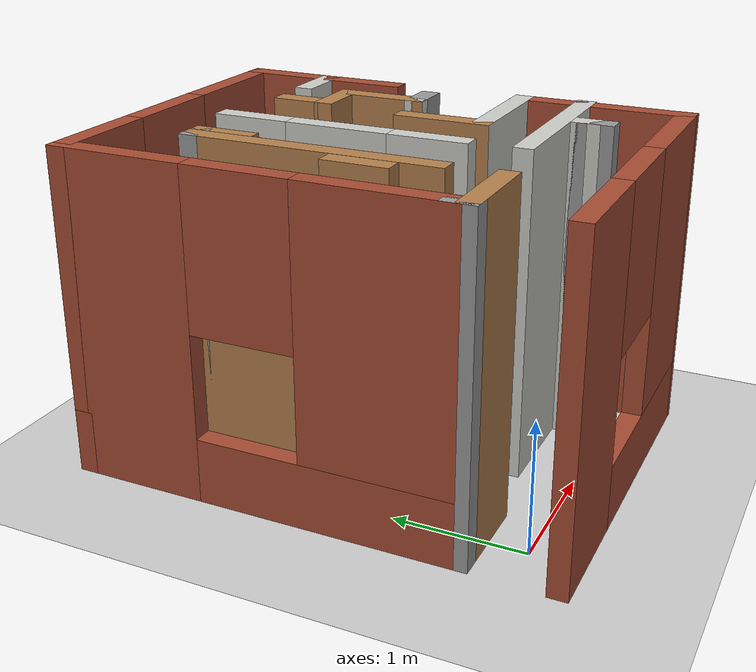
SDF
<?xml version="1.0"?>
<sdf version="1.6">
  <world name="default">

    <include>
      <uri>model://ground_plane</uri>
    </include>

    <include>
      <uri>model://sun</uri>
    </include>

    <include>
      <uri>model://labyrinth</uri>
      <pose>1.0 1.5 0.0 0 0 1.5708</pose>
    </include>

    <scene>
      <ambient>0.4 0.4 0.4 1</ambient>
      <background>0.7 0.7 0.7 1</background>
      <shadows>false</shadows>
    </scene>

    <gui fullscreen='0'>
      <camera name='user_camera'>
        <pose>0.0 0.0 10.0 0 1.5708 0</pose>
        <view_controller>orbit</view_controller>
      </camera>
    </gui>

  </world>
</sdf>
